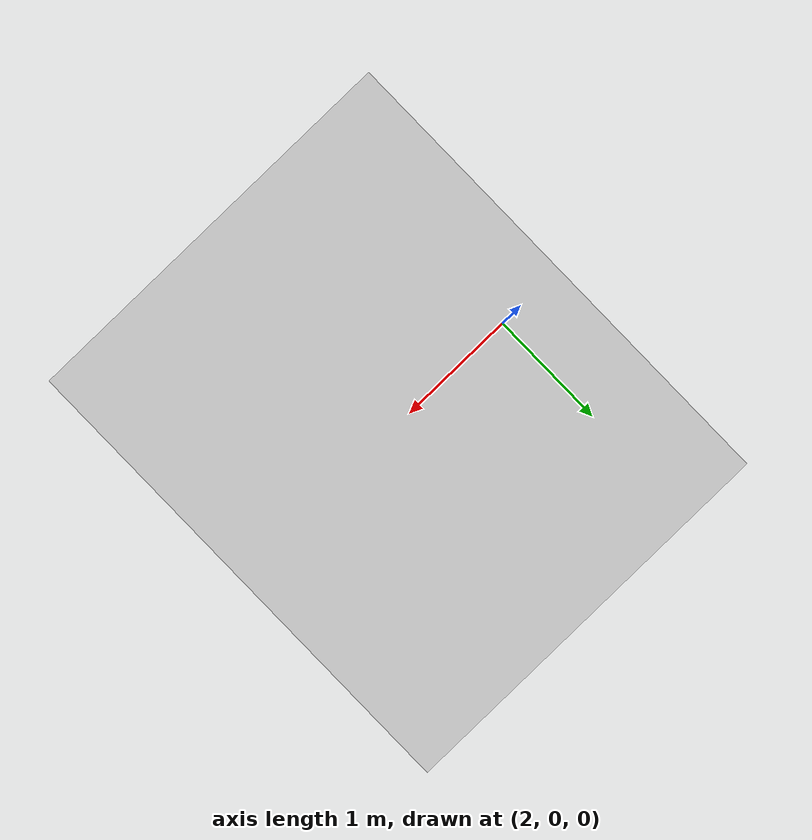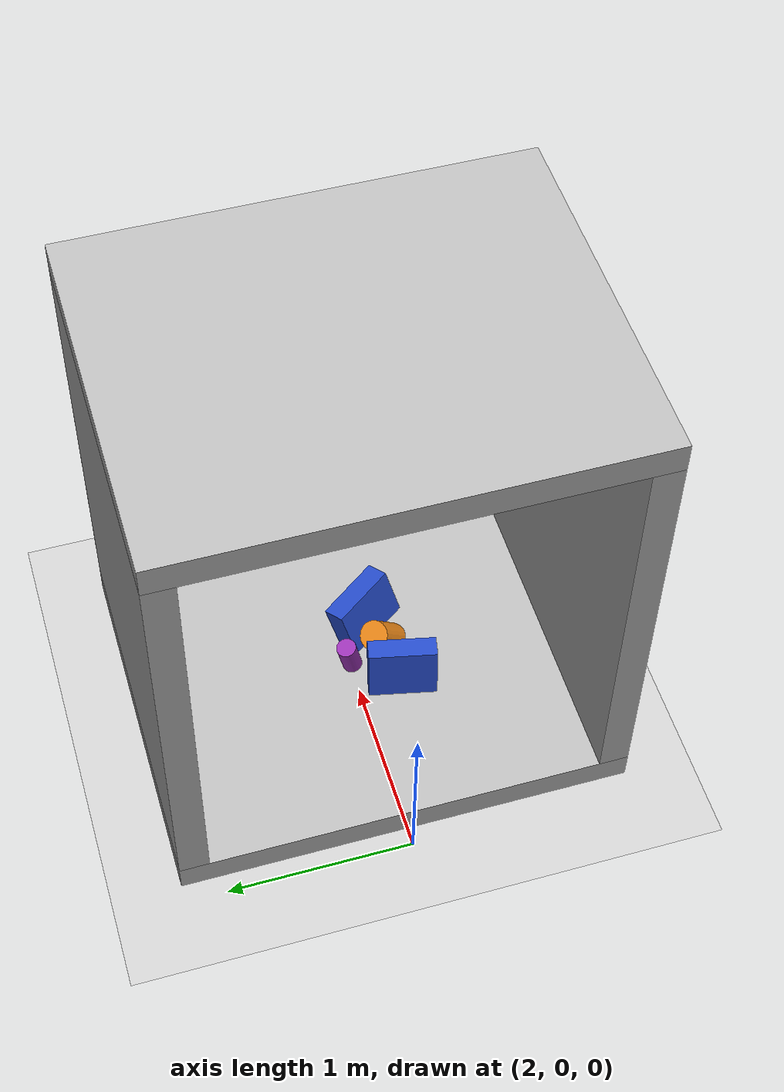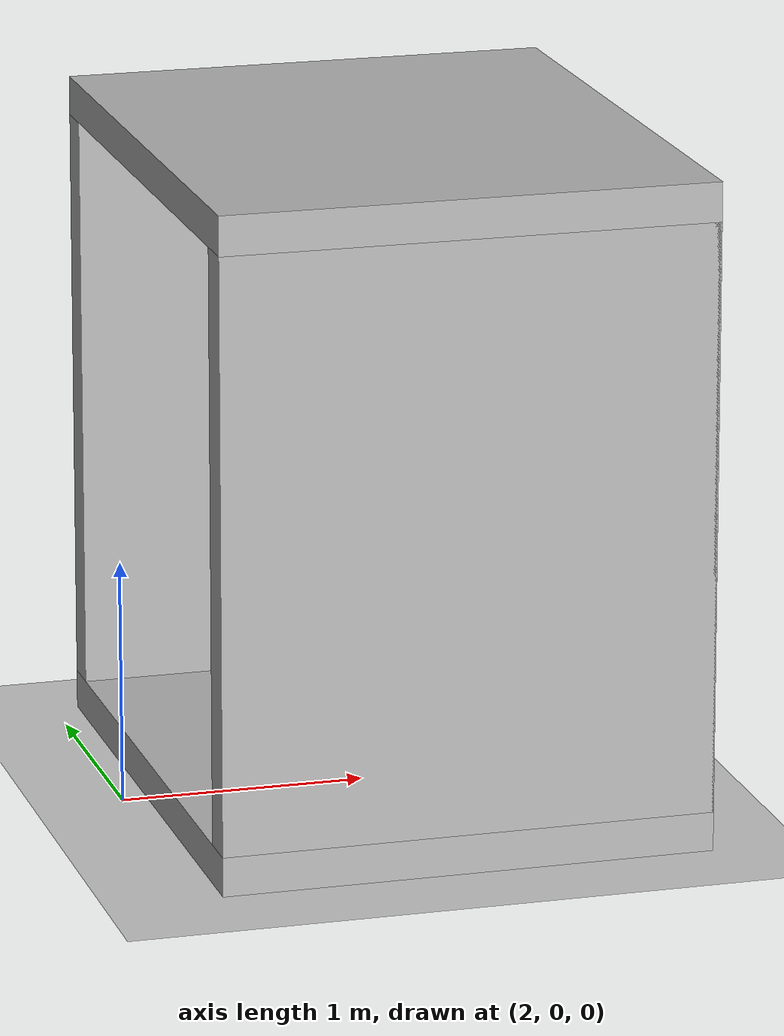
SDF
<sdf version="1.6">
 <world name="default">
  <light name="sun" type="directional">
   <pose>0 0 10 0 -0 0</pose>
   <diffuse>0.8 0.8 0.8 1</diffuse>
   <specular>0.1 0.1 0.1 1</specular>
   <attenuation>
    <range>1000</range>
    <constant>0.9</constant>
    <linear>0.01</linear>
    <quadratic>0.001</quadratic>
   </attenuation>
   <direction>-0.5 0.5 -1</direction>
  </light>
  <model name="ground_plane">
   <static>1</static>
   <link name="link">
    <collision name="collision">
     <geometry><plane><normal>0 0 1</normal><size>100 100</size></plane></geometry>
     <surface><friction><ode><mu>100</mu><mu2>50</mu2></ode></friction></surface>
    </collision>
    <visual name="visual">
     <cast_shadows>0</cast_shadows>
     <geometry><plane><normal>0 0 1</normal><size>100 100</size></plane></geometry>
     <material>
      <script><uri>file://media/materials/scripts/gazebo.material</uri><name>Gazebo/Grey</name></script>
     </material>
    </visual>
   </link>
  </model>
  <physics name="default_physics" default="0" type="ode">
   <real_time_update_rate>0</real_time_update_rate>
   <max_step_size>0.001</max_step_size>
   <real_time_factor>1</real_time_factor>
  </physics>
  <gravity>0 0 -9.8</gravity>
  <magnetic_field>6e-06 2.3e-05 -4.2e-05</magnetic_field>
  <atmosphere type="adiabatic"/>
  <scene><ambient>0.4 0.4 0.4 1</ambient><background>0.7 0.7 0.7 1</background><shadows>1</shadows></scene>
  <spherical_coordinates>
   <surface_model>EARTH_WGS84</surface_model>
   <latitude_deg>0</latitude_deg>
   <longitude_deg>0</longitude_deg>
   <elevation>0</elevation>
   <heading_deg>0</heading_deg>
  </spherical_coordinates>
  <model name="container">
   <link name="container">
    <inertial>
     <pose>0.22439 0 1.64098 0 -0 0</pose>
     <mass>205</mass>
     <inertia>
      <ixx>329.883</ixx>
      <ixy>1.59439e-15</ixy>
      <ixz>12.9249</ixz>
      <iyy>229.817</iyy>
      <iyz>1.16598e-14</iyz>
      <izz>267.609</izz>
     </inertia>
    </inertial>
    <collision name="container_back_collision">
     <pose>0.92 0 1.36 0 -0 0</pose>
     <geometry><box><size>0.16 2.45 2.4</size></box></geometry>
    </collision>
    <collision name="container_bottom_collision_1">
     <pose>0 0 0.08 0 -0 0</pose>
     <geometry><box><size>2 2.45 0.16</size></box></geometry>
    </collision>
    <collision name="container_left_collision_2">
     <pose>0 1.145 1.36 0 -0 0</pose>
     <geometry><box><size>2 0.16 2.4</size></box></geometry>
    </collision>
    <collision name="container_right_collision_3">
     <pose>0 -1.145 1.36 0 -0 0</pose>
     <geometry><box><size>2 0.16 2.4</size></box></geometry>
    </collision>
    <collision name="container_top_collision_4">
     <pose>0 0 2.64 0 -0 0</pose>
     <geometry><box><size>2 2.45 0.16</size></box></geometry>
    </collision>
    <visual name="container_back_visual">
     <pose>0.92 0 1.36 0 -0 0</pose>
     <geometry><box><size>0.16 2.45 2.4</size></box></geometry>
    </visual>
    <visual name="container_bottom_visual_1">
     <pose>0 0 0.08 0 -0 0</pose>
     <geometry><box><size>2 2.45 0.16</size></box></geometry>
    </visual>
    <visual name="container_left_visual_2">
     <pose>0 1.145 1.36 0 -0 0</pose>
     <geometry><box><size>2 0.16 2.4</size></box></geometry>
    </visual>
    <visual name="container_right_visual_3">
     <pose>0 -1.145 1.36 0 -0 0</pose>
     <geometry><box><size>2 0.16 2.4</size></box></geometry>
    </visual>
    <visual name="container_top_visual_4">
     <pose>0 0 2.64 0 -0 0</pose>
     <geometry><box><size>2 2.45 0.16</size></box></geometry>
    </visual>
   </link>
   <pose>3.10044 0.000488 2e-06 -0 2e-06 -0.000158</pose>
  </model>
  <model name="roblog-dhl-box-blue-simple-0-1072">
   <link name="link">
    <inertial>
     <mass>0.25</mass>
     <inertia>
      <ixx>0.00218083</ixx>
      <ixy>0</ixy>
      <ixz>0</ixz>
      <iyy>0.00473308</iyy>
      <iyz>0</iyz>
      <izz>0.00321375</izz>
     </inertia>
    </inertial>
    <collision name="link_collision"><geometry><box><size>0.372 0.126 0.298</size></box></geometry></collision>
    <visual name="link_visual">
     <geometry><box><size>0.372 0.126 0.298</size></box></geometry>
     <material>
      <script><name>Gazebo/Blue</name><uri>file://media/materials/scripts/gazebo.material</uri></script>
     </material>
    </visual>
   </link>
   <pose>3.2897 -0.102163 0.349899 -0.275437 -0.116901 -0.989857</pose>
  </model>
  <model name="roblog-dhl-box-blue-simple-1-1073">
   <link name="link">
    <inertial>
     <mass>0.25</mass>
     <inertia>
      <ixx>0.00218083</ixx>
      <ixy>0</ixy>
      <ixz>0</ixz>
      <iyy>0.00473308</iyy>
      <iyz>0</iyz>
      <izz>0.00321375</izz>
     </inertia>
    </inertial>
    <collision name="link_collision"><geometry><box><size>0.372 0.126 0.298</size></box></geometry></collision>
    <visual name="link_visual">
     <geometry><box><size>0.372 0.126 0.298</size></box></geometry>
     <material>
      <script><name>Gazebo/Blue</name><uri>file://media/materials/scripts/gazebo.material</uri></script>
     </material>
    </visual>
   </link>
   <pose>2.88965 -0.206655 0.316469 -0.143408 4e-06 -1.78519</pose>
  </model>
  <model name="roblog-vanish-detergent-simple-2-1074">
   <link name="link">
    <inertial>
     <mass>0.08</mass>
     <inertia>
      <ixx>0.000324987</ixx>
      <ixy>0</ixy>
      <ixz>0</ixz>
      <iyy>0.000324987</iyy>
      <iyz>0</iyz>
      <izz>0.00011664</izz>
     </inertia>
    </inertial>
    <collision name="link_collision">
     <geometry><cylinder><length>0.2</length><radius>0.054</radius></cylinder></geometry>
    </collision>
    <visual name="link_visual">
     <geometry><cylinder><length>0.2</length><radius>0.054</radius></cylinder></geometry>
     <material>
      <script><name>Gazebo/PurpleGlow</name><uri>file://media/materials/scripts/gazebo.material</uri></script>
     </material>
    </visual>
    <velocity_decay><linear>0.005</linear><angular>0.005</angular></velocity_decay>
   </link>
   <pose>3.06836 0.039983 0.269676 -0.15489 -0.17078 -0.375214</pose>
  </model>
  <model name="roblog-maisels-barrel-simple-3-1075">
   <link name="link">
    <inertial>
     <mass>0.54</mass>
     <inertia>
      <ixx>0.00354312</ixx>
      <ixy>0</ixy>
      <ixz>0</ixz>
      <iyy>0.00354312</iyy>
      <iyz>0</iyz>
      <izz>0.00181548</izz>
     </inertia>
    </inertial>
    <collision name="link_collision">
     <geometry><cylinder><length>0.242</length><radius>0.082</radius></cylinder></geometry>
    </collision>
    <visual name="link_visual">
     <geometry><cylinder><length>0.242</length><radius>0.082</radius></cylinder></geometry>
     <material>
      <script><name>Gazebo/Orange</name><uri>file://media/materials/scripts/gazebo.material</uri></script>
     </material>
    </visual>
    <velocity_decay><linear>0.005</linear><angular>0.005</angular></velocity_decay>
   </link>
   <pose>3.11494 -0.165814 0.305383 -0.333808 -0.625208 -0.487128</pose>
  </model>
 </world>
</sdf>
